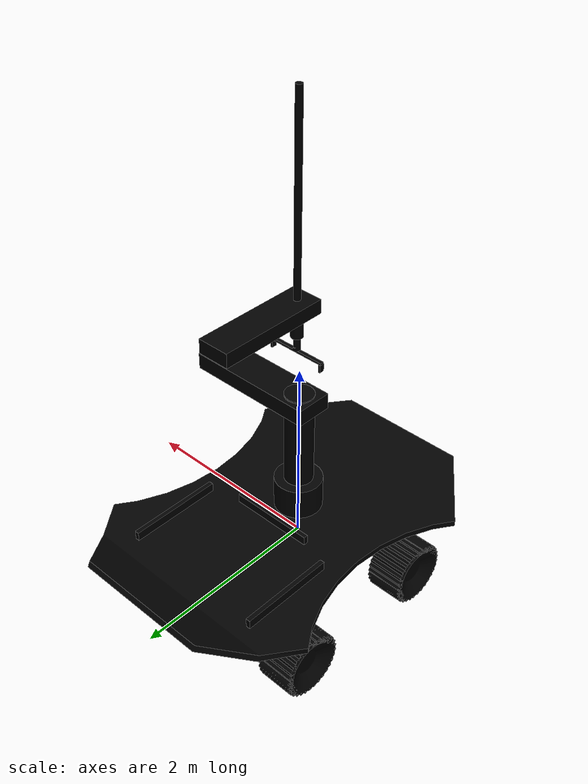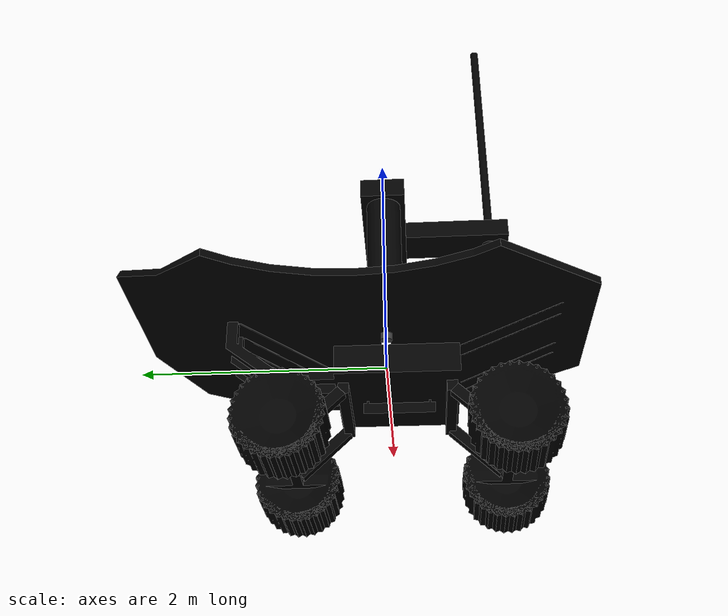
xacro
<?xml version="1.0"?>
<robot name="robot" xmlns:xacro="http://www.ros.org/wiki/xacro">
	<!-- argumentos -->
	<xacro:arg name="robot_ns" default=""/>
	<xacro:arg name="prefix" default=""/>
	<xacro:arg name="config_controllers" default="$(find rover_kachau)/config/rover_controllers.yaml"/>

	<!-- Propiedades -->
	<xacro:property name="PI" value="3.1415926535897931"/>
	<xacro:property name="wheel_offset_x" value="0.95"/>
	<xacro:property name="wheel_offset_y" value="0.95"/>
	<xacro:property name="wheel_offset_z" value="-0.38"/>
	<xacro:property name="arm_offset_x" value="0.0"/>
	<xacro:property name="arm_offset_y" value="0.82"/>
	<xacro:property name="arm_offset_z" value="0.69"/>

	<!-- includes -->
	<xacro:include filename="$(find rover_kachau)/urdf/utils/utils.urdf.xacro"/>
	<xacro:include filename="$(find rover_kachau)/urdf/base/robot_base.urdf.xacro"/>
	<xacro:include filename="$(find rover_kachau)/urdf/wheels/rover_wheel.urdf.xacro"/>
	<xacro:include filename="$(find rover_kachau)/urdf/arm/gripper.urdf.xacro"/>
	<xacro:include filename="$(find rover_kachau)/urdf/arm/scara.urdf.xacro"/>
	<xacro:include filename="$(find rover_kachau)/urdf/sensors/sensors.urdf.xacro"/>
	<xacro:include filename="$(find rover_kachau)/urdf/tank/rover_tank.urdf.xacro"/>
	<xacro:include filename="$(find rover_kachau)/urdf/ros2_control.urdf.xacro"/>

	<!-- Base -->
	<xacro:robot_base prefix="$(arg prefix)"/>

	<!-- Wheels -->
	<xacro:rover_wheel prefix="wheels_" parent_link="base_link"/>

	<!-- Tank -->
	<xacro:tank prefix="tank_" parent_link="base_link"/>

	<!-- Arm -->
	<xacro:scara prefix="" parent_link="base_link"/>
	<xacro:gripper prefix="" parent_link="_rot_link4_link"/>
	<xacro:arg name="update_rate" default="20"/>
	<xacro:ros2_control/>
</robot>

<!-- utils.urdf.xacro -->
<robot xmlns:xacro="http://www.ros.org/wiki/xacro">
  <material name="Material.001"><color rgba="0 0 0 1"/></material>
  <material name="Material.002"><color rgba="0 0 0 1"/></material>
  <material name="Material.003"><color rgba="0 0 0 1"/></material>
  <material name="Material.004"><color rgba="0 0 0 1"/></material>
  <material name="Material.005"><color rgba="0 0 0 1"/></material>
  <material name="Material.006"><color rgba="0 0 0 1"/></material>
  <material name="Material.007"><color rgba="0 0 0 1"/></material>
  <material name="Material.008"><color rgba="0 0 0 1"/></material>
  <material name="Material.009"><color rgba="0 0 0 1"/></material>
  <material name="Material.010"><color rgba="0 0 0 1"/></material>
  <material name="Material.011"><color rgba="0 0 0 1"/></material>
  <material name="Material.012"><color rgba="0 0 0 1"/></material>
  <material name="Material.013"><color rgba="0 0 0 1"/></material>
  <material name="Material.014"><color rgba="0 0 0 1"/></material>
  <material name="Material.015"><color rgba="0 0 0 1"/></material>
  <material name="Material.016"><color rgba="0 0 0 1"/></material>
  <material name="Material.017"><color rgba="0 0 0 1"/></material>
  <material name="Material.018"><color rgba="0 0 0 1"/></material>
  <material name="Material.019"><color rgba="0 0 0 1"/></material>
  <material name="Material.020"><color rgba="0 0 0 1"/></material>
  <material name="Material.021"><color rgba="0 0 0 1"/></material>

  <xacro:macro name="solid_cuboid_inertia" params="m w h d">
    <inertia ixx="${(m/12.0) * (h*h + d*d)}" ixy="0" ixz="0"
             iyy="${(m/12.0) * (w*w + d*d)}" iyz="0"
             izz="${(m/12.0) * (w*w + h*h)}"/>
  </xacro:macro>

  <xacro:macro name="solid_cylinder_inertia" params="m r h">
    <inertia ixx="${(m/12.0) * (3*r*r + h*h)}" ixy="0" ixz="0"
             iyy="${(m/12.0) * (3*r*r + h*h)}" iyz="0"
             izz="${(m*r*r)/2.0}"/>
  </xacro:macro>
</robot>

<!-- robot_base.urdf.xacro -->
<robot name="rover" xmlns:xacro="http://www.ros.org/wiki/xacro">
  <xacro:macro name="robot_base" params="prefix">
    <joint name="${prefix}base_footprint_joint" type="fixed">
      <parent link="${prefix}base_footprint"/>
      <child link="${prefix}base_link"/>
      <origin xyz="0 0 0" rpy="0 0 0"/>
    </joint>
    <joint name="${prefix}base_to_chassis" type="fixed">
      <parent link="${prefix}base_link"/>
      <child link="${prefix}chassis_link"/>
      <origin xyz="0 0 0" rpy="0 0 0"/>
    </joint>
    <link name="${prefix}base_footprint"/>
    <link name="${prefix}base_link"/>
    <link name="${prefix}chassis_link">
      <collision name="chassis_collision">
        <origin rpy="0.00000 0.00000 0.00000" xyz="0.00852 0.22069 0.34429"/>
        <geometry>
          <box size="1.95334 2.78490 0.07178"/>
        </geometry>
      </collision>
      <collision name="chassis_collision.000">
        <origin rpy="0.45745 -0.00000 0.00000" xyz="-0.00415 1.86091 0.44132"/>
        <geometry>
          <box size="1.50418 0.49477 0.06170"/>
        </geometry>
      </collision>
      <collision name="chassis_collision.000.001">
        <origin rpy="0.00000 0.00000 0.00000" xyz="-0.00415 -1.41774 0.34151"/>
        <geometry>
          <box size="1.46371 0.45353 0.08198"/>
        </geometry>
      </collision>
      <collision name="chassis_collision.000.001.002">
        <origin rpy="0.00000 0.00000 0.00000" xyz="-0.00415 -0.08136 -0.17336"/>
        <geometry>
          <box size="1.07593 0.96827 0.25516"/>
        </geometry>
      </collision>
      <inertial>
        <inertia ixx="0.00084" ixy="-0.00000" ixz="-0.00000" iyy="0.00030" iyz="0.00007" izz="0.00099"/>
        <origin rpy="0.00000 0.00000 0.00000" xyz="-0.00312 0.15411 0.17204"/>
        <mass value="0.00100"/>
      </inertial>
      <visual name="chassis">
        <origin rpy="0 0 0" xyz="0 0 0"/>
        <geometry>
          <mesh filename="package://rover_kachau/meshes/dae/Cube.001.dae" scale="1.0 1.0 1.0"/>
        </geometry>
        <material name="Material.004"/>
      </visual>
    </link>
  </xacro:macro>
</robot>

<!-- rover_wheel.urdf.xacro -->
<robot xmlns:xacro="http://www.ros.org/wiki/xacro">

  <xacro:macro name="rover_wheel" params="prefix parent_link">

    <joint name="${prefix}_axisF_link_joint" type="fixed">
      <origin rpy="0.00000 0.00000 3.14159" xyz="-0.00054 0.32397 -0.36400"/>
      <parent link="${parent_link}"/>
      <child link="${prefix}_axisF_link"/>
    </joint>

    <joint name="${prefix}_axisB_link_joint" type="fixed">
      <origin rpy="0.00000 0.00000 3.14159" xyz="-0.00054 -0.50271 -0.36400"/>
      <parent link="${parent_link}"/>
      <child link="${prefix}_axisB_link"/>
    </joint>

    <joint name="${prefix}_armFrontL_link_joint" type="fixed">
      <origin rpy="0.00000 0.82216 1.57080" xyz="0.41000 -0.20743 -0.20148"/>
      <parent link="${prefix}_axisF_link"/>
      <child link="${prefix}_armFrontL_link"/>
      <axis xyz="0.00000 0.00000 1.00000"/>
    </joint>

    <joint name="${prefix}_frontL_link_joint" type="continuous">
      <limit effort="0.00000" velocity="0.00000"/>
      <origin rpy="1.56418 -0.93639 3.12224" xyz="-0.02187 -0.29773 -0.28847"/>
      <parent link="${prefix}_armFrontL_link"/>
      <child link="${prefix}_frontL_link"/>
      <axis xyz="0.00000 0.00000 1.00000"/>
    </joint>

    <joint name="${prefix}_armFrontR_link_joint" type="fixed">
      <origin rpy="-0.00000 0.82216 1.57080" xyz="-0.40242 -0.20743 -0.20148"/>
      <parent link="${prefix}_axisF_link"/>
      <child link="${prefix}_armFrontR_link"/>
      <axis xyz="0.00000 0.00000 1.00000"/>
    </joint>

    <joint name="${prefix}_frontR_link_joint" type="continuous">
      <limit effort="0.00000" velocity="0.00000"/>
      <origin rpy="1.56418 -0.93639 3.12224" xyz="-0.02187 0.29825 -0.28847"/>
      <parent link="${prefix}_armFrontR_link"/>
      <child link="${prefix}_frontR_link"/>
      <axis xyz="0.00000 0.00000 1.00000"/>
    </joint>

    <joint name="${prefix}_armBackL_link_joint" type="fixed">
      <origin rpy="0.00000 -0.82216 1.57080" xyz="0.41000 0.20743 -0.20148"/>
      <parent link="${prefix}_axisB_link"/>
      <child link="${prefix}_armBackL_link"/>
      <axis xyz="0.00000 0.00000 1.00000"/>
    </joint>

    <joint name="${prefix}_backL_link_joint" type="continuous">
      <limit effort="0.00000" velocity="0.00000"/>
      <origin rpy="-1.60020 -0.56075 0.01354" xyz="0.02187 -0.29773 -0.28847"/>
      <parent link="${prefix}_armBackL_link"/>
      <child link="${prefix}_backL_link"/>
      <axis xyz="0.00000 0.00000 1.00000"/>
    </joint>

    <joint name="${prefix}_armBackR_link_joint" type="fixed">
      <origin rpy="0.00000 -0.82216 1.57080" xyz="-0.40243 0.20743 -0.20148"/>
      <parent link="${prefix}_axisB_link"/>
      <child link="${prefix}_armBackR_link"/>
      <axis xyz="0.00000 0.00000 1.00000"/>
    </joint>

    <joint name="${prefix}_backR_link_joint" type="continuous">
      <limit effort="0.00000" velocity="0.00000"/>
      <origin rpy="-1.60020 -0.56075 0.01354" xyz="0.02187 0.29825 -0.28847"/>
      <parent link="${prefix}_armBackR_link"/>
      <child link="${prefix}_backR_link"/>
      <axis xyz="0.00000 0.00000 1.00000"/>
    </joint>

    <link name="${prefix}_axisF_link">
      <collision name="axisF_collision">
        <origin rpy="0.00000 0.00000 0.00000" xyz="0.00000 -0.00000 0.00000"/>
        <geometry>
          <box size="0.85750 0.08751 0.07235"/>
        </geometry>
      </collision>
      <inertial>
        <inertia ixx="0.00215" ixy="0.00000" ixz="0.00000" iyy="0.12342" iyz="0.00000" izz="0.12383"/>
        <origin rpy="0.00000 0.00000 0.00000" xyz="0.00000 -0.00000 0.00000"/>
        <mass value="2.00000"/>
      </inertial>
      <visual name="axisF">
        <material name="Material.009"/>
        <origin rpy="0.00000 0.00000 0.00000" xyz="0.00000 0.00000 0.00000"/>
        <geometry>
          <box size="0.88702 0.08219 0.08564"/>
        </geometry>
      </visual>
    </link>

    <link name="${prefix}_axisB_link">
      <collision name="axisB_collision">
        <origin rpy="0.00000 0.00000 0.00000" xyz="-0.00231 0.00000 0.00000"/>
        <geometry>
          <box size="0.90922 0.09218 0.07716"/>
        </geometry>
      </collision>
      <inertial>
        <inertia ixx="0.00241" ixy="0.00000" ixz="0.00000" iyy="0.13877" iyz="0.00000" izz="0.13920"/>
        <origin rpy="0.00000 0.00000 0.00000" xyz="-0.00231 0.00000 0.00000"/>
        <mass value="2.00000"/>
      </inertial>
      <visual name="axisB">
        <material name="Material.008"/>
        <origin rpy="0.00000 0.00000 0.00000" xyz="-0.00000 0.00000 0.00000"/>
        <geometry>
          <box size="0.88702 0.08219 0.08564"/>
        </geometry>
      </visual>
    </link>

    <link name="${prefix}_armFrontL_link">
      <collision name="armFrontL_collision">
        <origin rpy="-0.00001 1.56569 -0.00001" xyz="-0.00257 -0.00198 0.00239"/>
        <geometry>
          <box size="0.50298 0.08415 0.06858"/>
        </geometry>
      </collision>
      <inertial>
        <inertia ixx="0.04846" ixy="0.00000" ixz="0.00000" iyy="0.02390" iyz="-0.02296" izz="0.02681"/>
        <origin rpy="0.00000 0.00000 0.00000" xyz="-0.00000 0.00000 -0.00000"/>
        <mass value="2.00000"/>
      </inertial>
      <visual name="armFrontL">
        <material name="Material.006"/>
        <origin rpy="3.14159 -1.56569 -3.14159" xyz="0.00000 0.00000 -0.00000"/>
        <geometry>
          <box size="0.53237 0.08219 0.08564"/>
        </geometry>
      </visual>
    </link>

    <link name="${prefix}_frontL_link">
      <collision name="frontL_collision">
        <origin rpy="0.01967 0.01541 -0.18756" xyz="0.00000 -0.00000 -0.00000"/>
        <geometry>
          <mesh filename="package://rover_kachau/meshes/dae/Cylinder.002.dae" scale="1.00000 1.00000 1.00000"/>
        </geometry>
        <surface>
          <friction>
            <ode>
              <mu>1.000000</mu>
              <mu2>1.000000</mu2>
              <fdir1>0.000000 0.000000 1.000000</fdir1>
              <slip1>0.50000</slip1>
              <slip2>0.50000</slip2>
            </ode>
          </friction>
        </surface>
      </collision>
      <inertial>
        <inertia ixx="0.56590" ixy="-0.00412" ixz="0.00325" iyy="0.35843" iyz="-0.00006" izz="0.35977"/>
        <origin rpy="0.00000 0.00000 0.00000" xyz="0.00054 -0.00061 0.03131"/>
        <mass value="10.00000"/>
      </inertial>
      <visual name="frontL">
        <material name="Material.020"/>
        <origin rpy="-0.00000 0.00000 0.00000" xyz="-0.00000 -0.00000 -0.00000"/>
        <geometry>
          <mesh filename="package://rover_kachau/meshes/dae/Cylinder.007.dae" scale="1.00000 1.00000 1.00000"/>
        </geometry>
      </visual>
    </link>

    <link name="${prefix}_armFrontR_link">
      <collision name="armFrontR_collision">
        <origin rpy="-3.14157 -1.56569 3.14157" xyz="0.00000 0.00580 0.00000"/>
        <geometry>
          <box size="0.52966 0.08095 0.08510"/>
        </geometry>
      </collision>
      <inertial>
        <inertia ixx="0.04846" ixy="0.00000" ixz="0.00000" iyy="0.02390" iyz="-0.02296" izz="0.02681"/>
        <origin rpy="0.00000 0.00000 0.00000" xyz="0.00000 -0.00000 0.00000"/>
        <mass value="2.00000"/>
      </inertial>
      <visual name="armFrontR">
        <material name="Material.007"/>
        <origin rpy="-3.14157 -1.56569 3.14157" xyz="0.00000 -0.00000 0.00000"/>
        <geometry>
          <box size="0.53237 0.08219 0.08564"/>
        </geometry>
      </visual>
    </link>

    <link name="${prefix}_frontR_link">
      <collision name="frontR_collision">
        <origin rpy="0.01967 0.01541 -0.18756" xyz="0.00000 -0.00000 -0.00000"/>
        <geometry>
          <mesh filename="package://rover_kachau/meshes/dae/Cylinder.004.dae" scale="1.00000 1.00000 1.00000"/>
        </geometry>
        <surface>
          <friction>
            <ode>
              <mu>1.000000</mu>
              <mu2>1.000000</mu2>
              <fdir1>0.000000 0.000000 1.000000</fdir1>
              <slip1>0.50000</slip1>
              <slip2>0.50000</slip2>
            </ode>
          </friction>
        </surface>
      </collision>
      <inertial>
        <inertia ixx="0.56589" ixy="-0.00414" ixz="0.00322" iyy="0.35844" iyz="-0.00006" izz="0.35978"/>
        <origin rpy="0.00000 0.00000 0.00000" xyz="-0.00018 0.00078 -0.03141"/>
        <mass value="10.00000"/>
      </inertial>
      <visual name="frontR">
        <material name="Material.021"/>
        <origin rpy="-0.00000 -0.00000 0.00000" xyz="0.00000 -0.00000 0.00000"/>
        <geometry>
          <mesh filename="package://rover_kachau/meshes/dae/Cylinder.008.dae" scale="1.00000 1.00000 1.00000"/>
        </geometry>
      </visual>
    </link>

    <link name="${prefix}_armBackL_link">
      <collision name="armBackL_collision">
        <origin rpy="-0.00001 -1.56569 0.00001" xyz="0.00479 -0.00207 0.00445"/>
        <geometry>
          <box size="0.53576 0.07240 0.07520"/>
        </geometry>
      </collision>
      <inertial>
        <inertia ixx="0.04846" ixy="0.00000" ixz="-0.00000" iyy="0.02390" iyz="0.02296" izz="0.02681"/>
        <origin rpy="0.00000 0.00000 0.00000" xyz="-0.00000 0.00000 -0.00000"/>
        <mass value="2.00000"/>
      </inertial>
      <visual name="armBackL">
        <material name="Material.002"/>
        <origin rpy="-3.14159 1.56569 -3.14159" xyz="-0.00000 0.00000 -0.00000"/>
        <geometry>
          <box size="0.53237 0.08219 0.08564"/>
        </geometry>
      </visual>
    </link>

    <link name="${prefix}_backL_link">
      <collision name="backL_collision">
        <origin rpy="0.01967 0.01541 -0.18756" xyz="-0.00000 0.00000 -0.00000"/>
        <geometry>
          <mesh filename="package://rover_kachau/meshes/dae/Cylinder.001.dae" scale="1.00000 1.00000 1.00000"/>
        </geometry>
        <surface>
          <friction>
            <ode>
              <mu>1.000000</mu>
              <mu2>1.000000</mu2>
              <fdir1>0.000000 0.000000 1.000000</fdir1>
              <slip1>0.50000</slip1>
              <slip2>0.50000</slip2>
            </ode>
          </friction>
        </surface>
      </collision>
      <inertial>
        <inertia ixx="0.56590" ixy="-0.00415" ixz="0.00325" iyy="0.35843" iyz="-0.00006" izz="0.35977"/>
        <origin rpy="0.00000 0.00000 0.00000" xyz="0.00050 -0.00084 0.03131"/>
        <mass value="10.00000"/>
      </inertial>
      <visual name="backL">
        <material name="Material.018"/>
        <origin rpy="-0.00000 0.00000 0.00000" xyz="-0.00000 0.00000 -0.00000"/>
        <geometry>
          <mesh filename="package://rover_kachau/meshes/dae/Cylinder.005.dae" scale="1.00000 1.00000 1.00000"/>
        </geometry>
      </visual>
    </link>

    <link name="${prefix}_armBackR_link">
      <collision name="armBackR_collision">
        <origin rpy="-3.14156 1.56569 -3.14156" xyz="-0.00000 0.00000 0.00000"/>
        <geometry>
          <box size="0.56133 0.08674 0.08389"/>
        </geometry>
      </collision>
      <inertial>
        <inertia ixx="0.04846" ixy="0.00000" ixz="-0.00000" iyy="0.02390" iyz="0.02296" izz="0.02681"/>
        <origin rpy="0.00000 0.00000 0.00000" xyz="-0.00000 0.00000 0.00000"/>
        <mass value="2.00000"/>
      </inertial>
      <visual name="armBackR">
        <material name="Material.005"/>
        <origin rpy="-3.14157 1.56569 -3.14157" xyz="-0.00000 0.00000 -0.00000"/>
        <geometry>
          <box size="0.53238 0.08219 0.08564"/>
        </geometry>
      </visual>

    </link>
    <link name="${prefix}_backR_link">
      <collision name="backR_collision">
        <origin rpy="0.01967 0.01541 -0.18756" xyz="0.00000 0.00000 -0.00000"/>
        <geometry>
          <mesh filename="package://rover_kachau/meshes/dae/Cylinder.003.dae" scale="1.00000 1.00000 1.00000"/>
        </geometry>
        <surface>
          <friction>
            <ode>
              <mu>1.000000</mu>
              <mu2>1.000000</mu2>
              <fdir1>0.000000 0.000000 1.000000</fdir1>
              <slip1>0.50000</slip1>
              <slip2>0.50000</slip2>
            </ode>
          </friction>
        </surface>
      </collision>
      <inertial>
        <inertia ixx="0.56589" ixy="-0.00412" ixz="0.00322" iyy="0.35844" iyz="-0.00006" izz="0.35978"/>
        <origin rpy="0.00000 0.00000 0.00000" xyz="-0.00022 0.00055 -0.03141"/>
        <mass value="10.00000"/>
      </inertial>
      <visual name="backR">
        <material name="Material.019"/>
        <origin rpy="-0.00000 0.00000 0.00000" xyz="0.00000 0.00000 0.00000"/>
        <geometry>
          <mesh filename="package://rover_kachau/meshes/dae/Cylinder.006.dae" scale="1.00000 1.00000 1.00000"/>
        </geometry>
      </visual>
    </link>

    <!-- Añadimos transmission para juntar todas las joints -->
    <transmission name="${prefix}_frontL_trans">
      <type>transmission_interface/SimpleTransmission</type>
      <joint name="${prefix}_frontL_link_joint">
        <hardwareInterface>hardware_interface/VelocityJointInterface</hardwareInterface>
      </joint>
      <actuator name="${prefix}_frontL_motor">
        <mechanicalReduction>1</mechanicalReduction>
      </actuator>
    </transmission>

    <transmission name="${prefix}_frontR_trans">
      <type>transmission_interface/SimpleTransmission</type>
      <joint name="${prefix}_frontR_link_joint">
        <hardwareInterface>hardware_interface/VelocityJointInterface</hardwareInterface>
      </joint>
      <actuator name="${prefix}_frontR_motor">
        <mechanicalReduction>1</mechanicalReduction>
      </actuator>
    </transmission>

    <transmission name="${prefix}_backL_trans">
      <type>transmission_interface/SimpleTransmission</type>
      <joint name="${prefix}_backL_link_joint">
        <hardwareInterface>hardware_interface/VelocityJointInterface</hardwareInterface>
      </joint>
      <actuator name="${prefix}_backL_motor">
        <mechanicalReduction>1</mechanicalReduction>
      </actuator>
    </transmission>

    <transmission name="${prefix}_backR_trans">
      <type>transmission_interface/SimpleTransmission</type>
      <joint name="${prefix}_backR_link_joint">
        <hardwareInterface>hardware_interface/VelocityJointInterface</hardwareInterface>
      </joint>
      <actuator name="${prefix}_backR_motor">
        <mechanicalReduction>1</mechanicalReduction>
      </actuator>
    </transmission>

    <gazebo reference="${prefix}_frontL_link">
      <mu1>5</mu1>
      <mu2>5</mu2>
    </gazebo>
    <gazebo reference="${prefix}_frontR_link">  <!-- corregido -->
      <mu1>5</mu1>
      <mu2>5</mu2>
    </gazebo>
    <gazebo reference="${prefix}_backL_link">  <!-- corregido -->
      <mu1>5</mu1>
      <mu2>5</mu2>
    </gazebo>
    <gazebo reference="${prefix}_backR_link">  <!-- corregido -->
      <mu1>5</mu1>
      <mu2>5</mu2>
    </gazebo>
  </xacro:macro>
</robot>

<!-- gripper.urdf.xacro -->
<robot xmlns:xacro="http://www.ros.org/wiki/xacro">
  <xacro:macro name="gripper" params="prefix parent_link">

    <joint name="${prefix}_pris_link4_link_joint" type="prismatic">
      <limit lower="-0.130" upper="2" effort="0.00000" velocity="0.00000"/>
      <origin rpy="3.14159 0 -1.5708" xyz="0 0 0"/>
      <parent link="${parent_link}"/>
      <child link="${prefix}_pris_link4_link"/>
      <axis xyz="0 0 1"/>
    </joint>

    <joint name="${prefix}_pris_link4.001_link_joint" type="prismatic">
      <limit lower="0.00000" upper="0.20000" effort="0.00000" velocity="0.00000"/>
      <origin rpy="0 1.5708 3.14159" xyz="0.34568 0.00059 0.07033"/>
      <parent link="${prefix}_pris_link4_link"/>
      <child link="${prefix}_pris_link4.001_link"/>
      <axis xyz="0 0 1"/>
    </joint>

    <joint name="${prefix}_pris_link4.002_link_joint" type="prismatic">
      <limit lower="0.00000" upper="0.20000" effort="0.00000" velocity="0.00000"/>
      <origin rpy="3.14159 1.5708 -3.14159" xyz="-0.34568 0.00059 0.07033"/>
      <parent link="${prefix}_pris_link4_link"/>
      <child link="${prefix}_pris_link4.002_link"/>
      <axis xyz="0 0 1"/>
    </joint>

    <link name="${prefix}_pris_link4_link">
      <collision name="pris_link4_collision">
        <origin rpy="-3.14159 0 0" xyz="0 0 0"/>
        <geometry>
          <mesh filename="package://rover_kachau/meshes/dae/Cylinder.013.dae" scale="0.03922 0.03922 0.61477"/>
        </geometry>
      </collision>
      <inertial>
        <inertia ixx="0.00071" ixy="0.00000" ixz="-0.00000" iyy="0.00072" iyz="0.00000" izz="0.00001"/>
        <origin rpy="0 0 0" xyz="0 0 0"/>
        <mass value="0.00100"/>
      </inertial>
      <visual name="pris_link4">
        <material name="Material.004"/>
        <origin rpy="-3.14159 0 0" xyz="0 0 0"/>
        <geometry>
          <mesh filename="package://rover_kachau/meshes/dae/Cylinder.013.dae" scale="0.03922 0.03922 0.61477"/>
        </geometry>
      </visual>
    </link>

    <link name="${prefix}_pris_link4.001_link">
      <collision name="pris_link4.001_collision">
        <origin rpy="0 0 0" xyz="0 0 0"/>
        <geometry>
          <box size="0.02510 0.06000 0.09410"/>
        </geometry>
      </collision>
      <inertial>
        <inertia ixx="0.00052" ixy="0.00000" ixz="0.00000" iyy="0.00040" iyz="0.00000" izz="0.00018"/>
        <origin rpy="0 0 0" xyz="0 0 0"/>
        <mass value="0.50000"/>
      </inertial>
      <visual name="pris_link4.001">
        <material name="Material.003"/>
        <origin rpy="0 -1.5708 0" xyz="0 0 0"/>
        <geometry>
          <mesh filename="package://rover_kachau/meshes/dae/Cylinder.009.dae" scale="0.03922 0.03922 0.61477"/>
        </geometry>
      </visual>
    </link>

    <link name="${prefix}_pris_link4.002_link">
      <collision name="pris_link4.002_collision">
        <origin rpy="0 -1.5708 3.14159" xyz="0 0 0"/>
        <geometry>
          <box size="0.02510 0.06000 0.09410"/>
        </geometry>
      </collision>
      <inertial>
        <inertia ixx="0.00052" ixy="-0.00000" ixz="0.00000" iyy="0.00040" iyz="-0.00000" izz="0.00018"/>
        <origin rpy="0 0 0" xyz="0 0 0"/>
        <mass value="0.00100"/>
      </inertial>
      <visual name="pris_link4.002">
        <material name="Material.004"/>
        <origin rpy="0 -1.5708 3.14159" xyz="0 0 0"/>
        <geometry>
          <mesh filename="package://rover_kachau/meshes/dae/Cylinder.010.dae" scale="0.03922 0.03922 0.61477"/>
        </geometry>
      </visual>
    </link>

  </xacro:macro>
</robot>

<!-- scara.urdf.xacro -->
<robot xmlns:xacro="http://www.ros.org/wiki/xacro">
  <xacro:macro name="scara" params="prefix parent_link">

    <joint name="${prefix}_scara_mount_joint" type="fixed">
      <parent link="${parent_link}"/>
      <child link="${prefix}_scara_base_link"/>
      <origin xyz="${arm_offset_x} 0 0.55" rpy="0 0 0"/>
    </joint>

    <joint name="${prefix}_link1_link_joint" type="fixed">
      <origin rpy="0.00000 0.00000 0.00000" xyz="0.00000 -0.00000 1.20145"/>
      <parent link="${prefix}_scara_base_link"/>
      <child link="${prefix}_link1_link"/>
      <axis xyz="0.00000 0.00000 1.00000"/>
    </joint>

    <joint name="${prefix}_link2_link_joint" type="continuous">
      <limit effort="10.0" velocity="10.0"/>
      <origin rpy="-0.00000 -0.00000 0.00000" xyz="0.00000 -0.00000 0.00000"/>
      <parent link="${prefix}_link1_link"/>
      <child link="${prefix}_link2_link"/>
      <axis xyz="0.00000 0.00000 1.00000"/>
    </joint>

    <joint name="${prefix}_link3_link_joint" type="revolute">
      <limit lower="-3.14000" upper="3.14000" effort="10.0" velocity="10.0"/>
      <origin rpy="0.00000 0.00000 1.57080" xyz="0.96320 -0.00000 0.06102"/>
      <parent link="${prefix}_link2_link"/>
      <child link="${prefix}_link3_link"/>
      <axis xyz="0.00000 0.00000 1.00000"/>
    </joint>

    <joint name="${prefix}_rot_link4_link_joint" type="continuous">
      <limit effort="10.0" velocity="10.0"/>
      <origin rpy="0.00000 0.00000 -0.00000" xyz="-0.99849 0.00559 -0.52727"/>
      <parent link="${prefix}_link3_link"/>
      <child link="${prefix}_rot_link4_link"/>
      <axis xyz="0.00000 0.00000 1.00000"/>
    </joint>

    <link name="${prefix}_scara_base_link">
      <collision name="base_collision">
        <origin rpy="0.00000 -0.00000 0.00000" xyz="0.00000 -0.00000 0.00000"/>
        <geometry>
          <cylinder radius="0.24386" length="0.32609"/>
        </geometry>
      </collision>
      <inertial>
        <inertia ixx="0.07439" ixy="0.00000" ixz="0.00000" iyy="0.07439" iyz="0.00000" izz="0.09086"/>
        <origin rpy="0.00000 0.00000 0.00000" xyz="0.00000 -0.00000 0.00000"/>
        <mass value="3.00000"/>
      </inertial>
      <visual name="base">
        <material name="Material.013"/>
        <origin rpy="0.00000 0.00000 0.00000" xyz="0.00000 0.00000 0.00000"/>
        <geometry>
          <cylinder radius="0.24611" length="0.34037"/>
        </geometry>
      </visual>
    </link>

    <link name="${prefix}_link1_link">
      <collision name="link1_collision">
        <origin rpy="0.00000 0.00000 0.00000" xyz="0.00000 0.00000 -0.51620"/>
        <geometry>
          <cylinder radius="0.14773" length="1.02786"/>
        </geometry>
      </collision>
      <inertial>
        <inertia ixx="0.28050" ixy="0.00000" ixz="0.00000" iyy="0.28050" iyz="0.00000" izz="0.03308"/>
        <origin rpy="0.00000 0.00000 0.00000" xyz="0.00000 0.00000 -0.51377"/>
        <mass value="3.00000"/>
      </inertial>
      <visual name="${prefix}_link1">
        <material name="Material.014"/>
        <origin rpy="0.00000 0.00000 0.00000" xyz="0.00000 0.00000 -0.51377"/>
        <geometry>
          <cylinder radius="0.14851" length="1.02753"/>
        </geometry>
      </visual>
    </link>

    <link name="${prefix}_link2_link">
      <collision name="link2_collision">
        <origin rpy="0.00000 0.00000 0.00000" xyz="0.48323 0.00337 -0.09891"/>
        <geometry>
          <box size="1.36656 0.37802 0.17955"/>
        </geometry>
      </collision>
      <inertial>
        <inertia ixx="0.01460" ixy="0.00000" ixz="-0.00000" iyy="0.15831" iyz="0.00000" izz="0.16753"/>
        <origin rpy="0.00000 0.00000 0.00000" xyz="0.48323 0.00337 -0.09891"/>
        <mass value="1.00000"/>
      </inertial>
      <visual name="link2">
        <material name="Material.015"/>
        <origin rpy="0.00000 0.00000 0.00000" xyz="0.48828 0.00198 -0.09819"/>
        <geometry>
          <box size="1.35462 0.38291 0.17125"/>
        </geometry>
      </visual>
    </link>

    <link name="${prefix}_link3_link">
      <collision name="link3_collision">
        <origin rpy="0.00000 -0.00000 -0.00000" xyz="-0.48941 -0.00901 0.01379"/>
        <geometry>
          <box size="1.34352 0.38869 0.16903"/>
        </geometry>
      </collision>
      <inertial>
        <inertia ixx="0.15280" ixy="0.00000" ixz="-0.00000" iyy="0.01497" iyz="0.00000" izz="0.16301"/>
        <origin rpy="0.00000 0.00000 0.00000" xyz="-0.48941 -0.00901 0.01379"/>
        <mass value="1.00000"/>
      </inertial>
      <visual name="link3">
        <material name="Material.016"/>
        <origin rpy="0.00000 -0.00000 0.00000" xyz="-0.49140 -0.00796 0.01204"/>
        <geometry>
          <box size="1.35462 0.38291 0.17125"/>
        </geometry>
      </visual>
    </link>

    <link name="${prefix}_rot_link4_link">
      <collision name="rot_link4_collision">
        <origin rpy="0.00000 0.00000 -0.00000" xyz="0.00000 -0.00000 0.31437"/>
        <geometry>
          <cylinder radius="0.07101" length="0.27439"/>
        </geometry>
      </collision>
      <inertial>
        <inertia ixx="0.00404" ixy="0.00000" ixz="0.00000" iyy="0.00404" iyz="0.00000" izz="0.00126"/>
        <origin rpy="0.00000 0.00000 0.00000" xyz="0.00000 -0.00000 0.31363"/>
        <mass value="0.50000"/>
      </inertial>
      <visual name="rot_link4">
        <material name="Material.017"/>
        <origin rpy="-0.00000 -0.00000 0.00000" xyz="-0.00000 -0.00000 0.31363"/>
        <geometry>
          <cylinder radius="0.07102" length="0.28609"/>
        </geometry>
      </visual>
    </link>

  </xacro:macro>
</robot>

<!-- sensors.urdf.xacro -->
<robot xmlns:xacro="http://www.ros.org/wiki/xacro">
  <xacro:include filename="$(find rover_kachau)/urdf/sensors/imu_sensor.urdf.xacro"/>
  <xacro:include filename="$(find rover_kachau)/urdf/sensors/camera.urdf.xacro"/>
  <xacro:include filename="$(find rover_kachau)/urdf/sensors/gpu_lidar.urdf.xacro"/>
  <xacro:include filename="$(find rover_kachau)/urdf/sensors/gps.urdf.xacro"/>

  <xacro:sensor_imu prefix="imu" parent="base_link">
    <origin xyz="0 0 0.1" rpy="0 0 0"/>
  </xacro:sensor_imu>

  <xacro:camera_sensor
    frame_prefix="front_cam"
    parent_link="base_link"
    horizontal_fov="1.57"
    video_width="640"
    video_height="480">
    <origin xyz="0.5 0 0.3" rpy="0 0 0"/>
  </xacro:camera_sensor>

  <xacro:sensor_3d_lidar frame_prefix="lidar" parent="base_link">
    <origin xyz="0 0 0.3" rpy="0 0 0"/>
  </xacro:sensor_3d_lidar>

  <xacro:sensor_gps frame_prefix="gps" parent="base_link">
    <origin xyz="0 0 0.2" rpy="0 0 0"/>
  </xacro:sensor_gps>

</robot>

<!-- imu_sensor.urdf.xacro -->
<robot xmlns:xacro="http://www.ros.org/wiki/xacro">
<xacro:macro name="sensor_imu" params="prefix ns:='' topic:='imu/data' parent *origin">

  <joint name="${prefix}_joint" type="fixed">
    <axis xyz="1 0 0"/>
    <xacro:insert_block name="origin"/>
    <parent link="${parent}"/>
    <child link="${prefix}_link"/>
  </joint>

  <link name="${prefix}_link">
    <inertial>
      <origin xyz="0.0 0.0 0.01" rpy="0 0 0"/>
      <mass value="0.005"/>
      <xacro:solid_cuboid_inertia m="0.005" w="0.001" h="0.001" d="0.001"/>
    </inertial>
    <visual>
      <origin rpy="0 0 0" xyz="0 0 0"/>
      <geometry>
        <box size="0.001 0.001 0.001"/>
      </geometry>
    </visual>
  </link>

  <gazebo reference="${prefix}_link">
    <sensor name="${prefix}_sensor" type="imu">
      <always_on>1</always_on>
      <update_rate>30</update_rate>
      <topic>${topic}</topic>
    </sensor>
  </gazebo>

</xacro:macro>
</robot>

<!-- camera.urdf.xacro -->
<robot xmlns:xacro="http://www.ros.org/wiki/xacro">
<xacro:macro name="camera_sensor"
  params="frame_prefix
          parent_link
          *origin
          node_name:=camera
          node_namespace:=${None}
          topic_prefix:=~/
          horizontal_fov:=80
          vertical_fov:=60
          video_width:=1280
          video_height:=720
          video_fps:=30">

  <xacro:if value="${node_namespace == None}">
    <xacro:property name="node_namespace" value="${node_name}"/>
  </xacro:if>

  <!-- Camera base link -->
  <joint name="${frame_prefix}_camera_base_joint" type="fixed">
    <xacro:insert_block name="origin"/>
    <parent link="${parent_link}"/>
    <child link="${frame_prefix}_camera_base_link"/>
  </joint>

  <link name="${frame_prefix}_camera_base_link">
    <visual>
      <origin xyz="0 0 0" rpy="0 0 0"/>
      <geometry>
        <box size="0.025 0.05 0.025"/>
      </geometry>
      <material name="light_grey">
        <color rgba="0.35 0.35 0.35 1"/>
      </material>
    </visual>
    <collision>
      <origin xyz="0.0 0.0 0.0" rpy="0 0 0"/>
      <geometry>
        <box size="0.025 0.05 0.025"/>
      </geometry>
    </collision>
    <inertial>
      <mass value="0.135"/>
      <origin xyz="0 0 0"/>
      <xacro:solid_cuboid_inertia m="0.135" w="0.033" h="0.175" d="0.03"/>
    </inertial>
  </link>

  <!-- Camera optical frame -->
  <joint name="${frame_prefix}_camera_joint" type="fixed">
    <origin xyz="0.0 -0.06 0.0" rpy="0.0 0.0 0.0"/>
    <parent link="${frame_prefix}_camera_base_link"/>
    <child link="${frame_prefix}_camera_frame"/>
  </joint>

  <link name="${frame_prefix}_camera_frame"/>

  <joint name="${frame_prefix}color_optical_joint" type="fixed">
    <origin xyz="0.0 0.0 0.0" rpy="${-pi/2} 0.0 ${-pi/2}"/>
    <parent link="${frame_prefix}_camera_frame"/>
    <child link="${frame_prefix}_camera_optical_frame"/>
  </joint>

  <link name="${frame_prefix}_camera_optical_frame"/>

  <gazebo reference="${frame_prefix}_camera_frame">
    <sensor name="${frame_prefix}_sensor" type="camera">
      <visualize>true</visualize>
      <update_rate>${video_fps}</update_rate>
      <topic>/${frame_prefix}/image</topic>
      <camera>
        <horizontal_fov>${horizontal_fov}</horizontal_fov>
        <image>
          <width>${video_width}</width>
          <height>${video_height}</height>
          <format>R8G8B8</format>
        </image>
        <clip>
          <near>0.10</near>
          <far>15.0</far>
        </clip>
        <noise>
          <type>gaussian</type>
          <mean>0.0</mean>
          <stddev>0.007</stddev>
        </noise>
        <optical_frame_id>${frame_prefix}_camera_optical_frame</optical_frame_id>
      </camera>
    </sensor>
  </gazebo>

</xacro:macro>

  <xacro:macro name="imu_sensor" params="prefix topic parent_link">
    <link name="${prefix}_imu_link"/>
    <joint name="${prefix}_imu_joint" type="fixed">
      <parent link="${parent_link}"/>
      <child link="${prefix}_imu_link"/>
      <origin xyz="0 0 0" rpy="0 0 0"/>
    </joint>
    <gazebo reference="${prefix}_imu_link">
      <sensor name="${prefix}_sensor" type="imu">
        <always_on>1</always_on>
        <update_rate>30</update_rate>
        <topic>${topic}</topic>
      </sensor>
    </gazebo>
  </xacro:macro>

</robot>

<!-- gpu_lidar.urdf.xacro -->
<robot xmlns:xacro="http://www.ros.org/wiki/xacro">
<xacro:macro name="sensor_3d_lidar"
  params="frame_prefix
          parent
          *origin
          node_name:=sensor_3d_lidar
          node_namespace:=${None}
          topic_prefix:=~/
          gpu:=true">

  <joint name="${frame_prefix}_base_joint" type="fixed">
    <xacro:insert_block name="origin"/>
    <parent link="${parent}"/>
    <child link="${frame_prefix}_base_link"/>
  </joint>

  <link name="${frame_prefix}_base_link">
    <collision>
      <origin xyz="0 0 0" rpy="0 0 0"/>
      <geometry>
        <cylinder radius="0.05" length="0.1"/>
      </geometry>
    </collision>
    <visual>
      <origin xyz="0 0 0" rpy="0 0 0"/>
      <geometry>
        <cylinder radius="0.05" length="0.1"/>
      </geometry>
      <material name="blackgray_color">
        <color rgba="0.25 0.25 0.25 1"/>
      </material>
    </visual>
    <inertial>
      <mass value="1.0"/>
      <origin xyz="0 0 0.04135"/>
      <xacro:solid_cylinder_inertia m="1.0" r="0.05" h="0.1"/>
    </inertial>
  </link>

  <joint name="${frame_prefix}_joint" type="fixed">
    <parent link="${frame_prefix}_base_link"/>
    <child link="${frame_prefix}_link"/>
    <origin xyz="0.0 0.0 0.0635" rpy="0 0 0"/>
  </joint>

  <link name="${frame_prefix}_link"/>

  <gazebo reference="${frame_prefix}_link">
    <sensor name="gpu_lidar" type="gpu_lidar">
      <pose relative_to="${frame_prefix}_link">0 0 0 0 0 0</pose>
      <topic>${frame_prefix}_sensor</topic>
      <update_rate>20</update_rate>
      <gz_frame_id>${frame_prefix}_link</gz_frame_id>
      <lidar>
        <scan>
          <horizontal>
            <samples>450</samples>
            <resolution>1</resolution>
            <min_angle>-3.141592</min_angle>
            <max_angle>3.141592</max_angle>
          </horizontal>
          <vertical>
            <samples>32</samples>
            <resolution>1</resolution>
            <min_angle>-0.436332</min_angle>
            <max_angle>0.08726</max_angle>
          </vertical>
        </scan>
        <range>
          <min>0.2</min>
          <max>90.0</max>
          <resolution>0.02</resolution>
        </range>
      </lidar>
      <visualize>true</visualize>
    </sensor>
  </gazebo>

</xacro:macro>
</robot>

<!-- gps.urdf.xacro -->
<robot xmlns:xacro="http://www.ros.org/wiki/xacro">
<xacro:macro name="sensor_gps"
  params="frame_prefix
          parent
          *origin
          simulation:=false
          node_name:=gps
          node_namespace:=${None}
          topic_prefix:=~/
          update_rate:=5.0">

  <joint name="${frame_prefix}_joint" type="fixed">
    <xacro:insert_block name="origin"/>
    <parent link="${parent}"/>
    <child link="${frame_prefix}_base_link"/>
  </joint>

  <link name="${frame_prefix}_base_link">
    <inertial>
      <origin xyz="0.0 0.0 0.015" rpy="0 0 0"/>
      <mass value="0.2"/>
      <xacro:solid_cuboid_inertia m="0.2" w="0.081" h="0.081" d="0.03"/>
    </inertial>
    <visual>
      <origin rpy="0 0 0" xyz="0 0 0"/>
      <material name="gps_color">
        <color rgba="1 1 1 1"/>
      </material>
      <geometry>
        <box size="0.075 0.075 0.025"/>
      </geometry>
    </visual>
    <collision>
      <origin rpy="0 0 0" xyz="0 0 0"/>
      <geometry>
        <box size="0.075 0.075 0.025"/>
      </geometry>
    </collision>
  </link>

  <gazebo reference="${frame_prefix}_base_link">
    <sensor name="${frame_prefix}_sensor" type="navsat">
      <always_on>1</always_on>
      <update_rate>${update_rate}</update_rate>
      <topic>/robot/gps/fix</topic>
      <gz_frame_id>${frame_prefix}_base_link</gz_frame_id>
    </sensor>
  </gazebo>

</xacro:macro>
</robot>

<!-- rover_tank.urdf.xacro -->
<robot name="rover" xmlns:xacro="http://www.ros.org/wiki/xacro">

  <xacro:macro name="tank" params="prefix parent_link">

    <joint name="${prefix}_Cube.001_link_joint" type="fixed">
      <origin rpy="0.00000 0.00000 3.14159" xyz="-0.78494 1.00818 0.42156"/>
      <parent link="${parent_link}"/>
      <child link="${prefix}_Cube.001_link"/>
    </joint>

    <joint name="${prefix}_Cube.002_link_joint" type="fixed">
      <origin rpy="0.00000 0.00000 1.57080" xyz="-0.01153 0.38661 0.42391"/>
      <parent link="${parent_link}"/>
      <child link="${prefix}_Cube.002_link"/>
      <axis xyz="0.00000 0.00000 1.00000"/>
    </joint>

    <joint name="${prefix}_Cube_link_joint" type="fixed">
      <origin rpy="0.00000 0.00000 3.14159" xyz="0.76908 0.97227 0.42156"/>
      <parent link="${parent_link}"/>
      <child link="${prefix}_Cube_link"/>
    </joint>

    <link name="${prefix}_Cube.001_link">
      <collision name="Cube.001_collision">
        <origin rpy="0.00000 0.00000 0.00000" xyz="0.00000 0.00000 0.00000"/>
        <geometry>
          <box size="0.04158 0.98771 0.10979"/>
        </geometry>
      </collision>
      <inertial>
        <inertia ixx="0.00008" ixy="0.00000" ixz="0.00000" iyy="0.00000" iyz="0.00000" izz="0.00008"/>
        <origin rpy="0.00000 0.00000 0.00000" xyz="0.00000 0.00000 0.00000"/>
        <mass value="0.00100"/>
      </inertial>
      <visual name="Cube.001">
        <material name="Material.010"/>
        <origin rpy="0.00000 0.00000 0.00000" xyz="0.00000 0.00000 0.00000"/>
        <geometry>
          <box size="0.04657 0.98760 0.09602"/>
        </geometry>
      </visual>
    </link>

    <link name="${prefix}_Cube.002_link">
      <collision name="Cube.002_collision">
        <origin rpy="0.00000 0.00000 0.00000" xyz="0.00000 0.00000 0.00000"/>
        <geometry>
          <box size="0.05301 0.92029 0.10866"/>
        </geometry>
      </collision>
      <inertial>
        <inertia ixx="0.00000" ixy="0.00000" ixz="0.00000" iyy="0.00007" iyz="0.00000" izz="0.00007"/>
        <origin rpy="0.00000 0.00000 0.00000" xyz="0.00000 0.00000 0.00000"/>
        <mass value="0.00100"/>
      </inertial>
      <visual name="Cube.002">
        <material name="Material.011"/>
        <origin rpy="0.00000 0.00000 -0.00000" xyz="0.00000 0.00000 0.00000"/>
        <geometry>
          <box size="0.04657 0.89445 0.09602"/>
        </geometry>
      </visual>
    </link>

    <link name="${prefix}_Cube_link">
      <collision name="Cube_collision">
        <origin rpy="0.00000 0.00000 0.00000" xyz="0.00000 0.00000 0.00000"/>
        <geometry>
          <box size="0.06923 0.98010 0.10221"/>
        </geometry>
      </collision>
      <inertial>
        <inertia ixx="0.00008" ixy="0.00000" ixz="0.00000" iyy="0.00000" iyz="0.00000" izz="0.00008"/>
        <origin rpy="0.00000 0.00000 0.00000" xyz="0.00000 0.00000 0.00000"/>
        <mass value="0.00100"/>
      </inertial>
      <visual name="Cube">
        <material name="Material.012"/>
        <origin rpy="0.00000 0.00000 0.00000" xyz="0.00000 0.00000 0.00000"/>
        <geometry>
          <box size="0.04657 0.98760 0.09602"/>
        </geometry>
      </visual>
    </link>

  </xacro:macro>

</robot>
